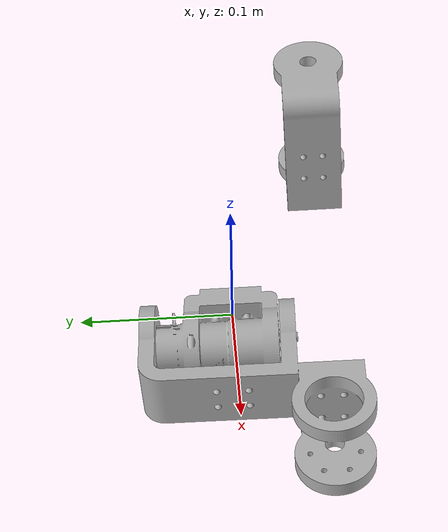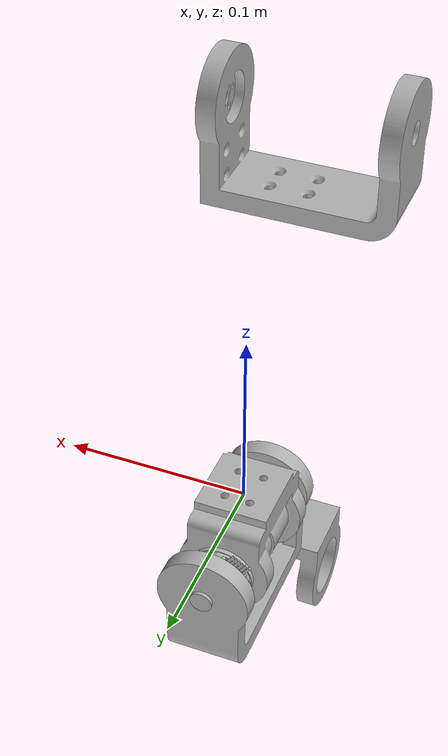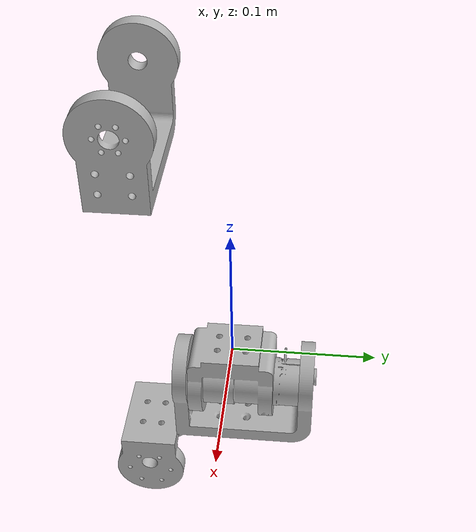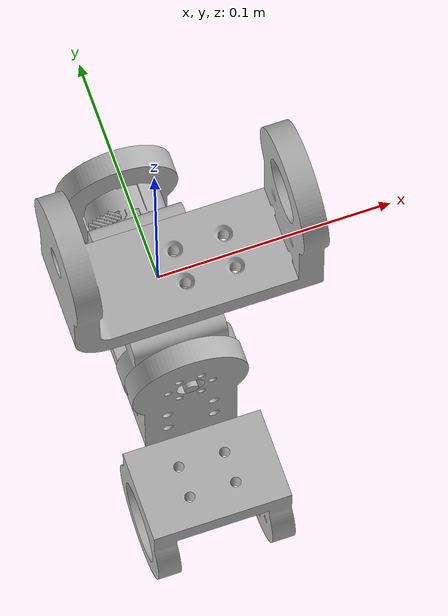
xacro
<?xml version="1.0" ?>
<robot name="test" xmlns:xacro="http://www.ros.org/wiki/xacro">

<xacro:include filename="$(find test_description)/urdf/materials.xacro" />
<xacro:include filename="$(find test_description)/urdf/test.trans" />
<xacro:include filename="$(find test_description)/urdf/test.gazebo" />
<link name="base_link">
  <inertial>
    <origin rpy="0 0 0" xyz="-2.7174602321866267e-05 0.006053798965408933 -0.028185037843435335"/>
    <mass value="0.512530898807761"/>
    <inertia ixx="0.000232" ixy="0.0" ixz="0.0" iyy="0.000107" iyz="6e-06" izz="0.000214"/>
  </inertial>
  <visual>
    <origin rpy="0 0 0" xyz="0 0 0"/>
    <geometry>
      <mesh filename="package://test_description/meshes/base_link.stl" scale="0.001 0.001 0.001"/>
    </geometry>
    <material name="silver_default"/>
  </visual>
  <collision>
    <origin rpy="0 0 0" xyz="0 0 0"/>
    <geometry>
      <mesh filename="package://test_description/meshes/base_link.stl" scale="0.001 0.001 0.001"/>
    </geometry>
  </collision>
</link>

<link name="link1_1">
  <inertial>
    <origin rpy="0 0 0" xyz="-0.0036608421504197384 0.00495462186502682 -0.05107161459210951"/>
    <mass value="0.1779868356482076"/>
    <inertia ixx="0.000574" ixy="-2.3e-05" ixz="-3e-05" iyy="0.000265" iyz="-0.000174" izz="0.000427"/>
  </inertial>
  <visual>
    <origin rpy="0 0 0" xyz="0.0 0.03 0.023"/>
    <geometry>
      <mesh filename="package://test_description/meshes/link1_1.stl" scale="0.001 0.001 0.001"/>
    </geometry>
    <material name="silver_default"/>
  </visual>
  <collision>
    <origin rpy="0 0 0" xyz="0.0 0.03 0.023"/>
    <geometry>
      <mesh filename="package://test_description/meshes/link1_1.stl" scale="0.001 0.001 0.001"/>
    </geometry>
  </collision>
</link>

<link name="link2_1">
  <inertial>
    <origin rpy="0 0 0" xyz="-0.03930886187828325 -0.008700000000028393 0.048588395196188336"/>
    <mass value="0.09077100718883686"/>
    <inertia ixx="6e-05" ixy="0.0" ixz="4e-06" iyy="0.000179" iyz="0.0" izz="0.000147"/>
  </inertial>
  <visual>
    <origin rpy="0 0 0" xyz="-0.03 0.0521 0.169"/>
    <geometry>
      <mesh filename="package://test_description/meshes/link2_1.stl" scale="0.001 0.001 0.001"/>
    </geometry>
    <material name="silver_default"/>
  </visual>
  <collision>
    <origin rpy="0 0 0" xyz="-0.03 0.0521 0.169"/>
    <geometry>
      <mesh filename="package://test_description/meshes/link2_1.stl" scale="0.001 0.001 0.001"/>
    </geometry>
  </collision>
</link>

<joint name="joint1" type="continuous">
  <origin rpy="0 0 0" xyz="0.0 -0.03 -0.023"/>
  <parent link="base_link"/>
  <child link="link1_1"/>
  <axis xyz="0.0 1.0 0.0"/>
</joint>

<joint name="joint2" type="continuous">
  <origin rpy="0 0 0" xyz="0.03 -0.0221 0.146"/>
  <parent link="link1_1"/>
  <child link="link2_1"/>
  <axis xyz="-1.0 -0.0 -0.0"/>
</joint>

</robot>

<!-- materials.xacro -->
<robot name="test" xmlns:xacro="http://www.ros.org/wiki/xacro" >

<material name="silver_default">
  <color rgba="0.700 0.700 0.700 1.000"/>
</material>

</robot>

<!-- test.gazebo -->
<robot name="test" xmlns:xacro="http://www.ros.org/wiki/xacro" >

<xacro:property name="body_color" value="Gazebo/Silver" />

<gazebo>
  <plugin filename="libgazebo_ros_control.so" name="control"/>
</gazebo>
<gazebo reference="base_link">
  <material>${body_color}</material>
  <mu1>0.2</mu1>
  <mu2>0.2</mu2>
  <selfCollide>true</selfCollide>
  <gravity>true</gravity>
</gazebo>

<gazebo reference="link1_1">
  <material>${body_color}</material>
  <mu1>0.2</mu1>
  <mu2>0.2</mu2>
  <selfCollide>true</selfCollide>
</gazebo>

<gazebo reference="link2_1">
  <material>${body_color}</material>
  <mu1>0.2</mu1>
  <mu2>0.2</mu2>
  <selfCollide>true</selfCollide>
</gazebo>

</robot>
